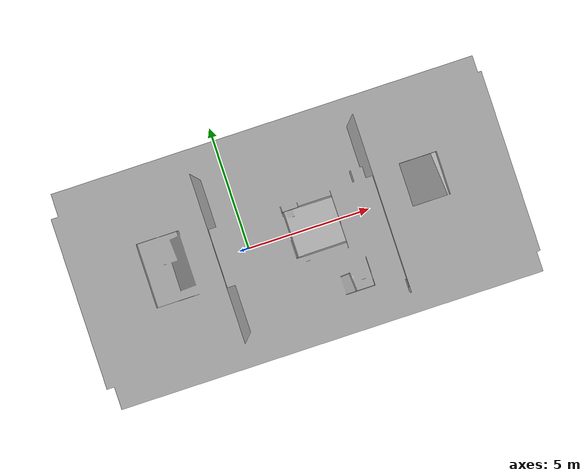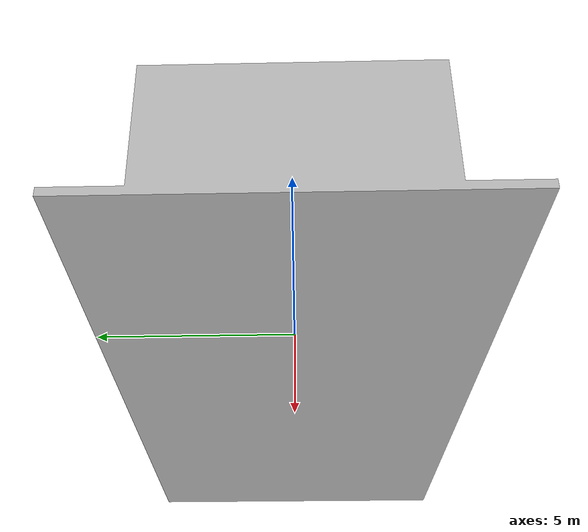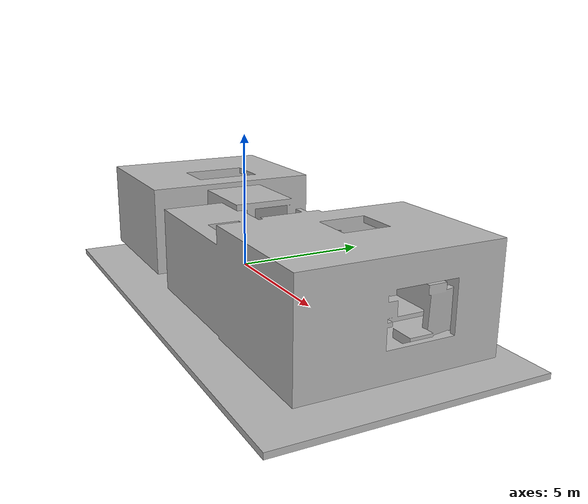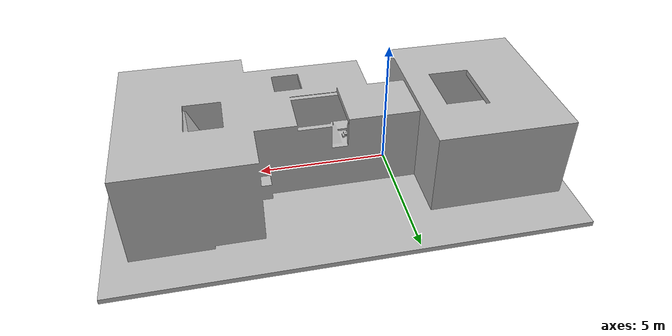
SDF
<?xml version="1.0"?>
<sdf version="1.9">
  <model name="pulso_disaster_scene">
    <static>true</static>
    <link name="scene">
      <visual name="visual">
        <geometry><mesh><uri>meshes/pulso_disaster_visual.dae</uri></mesh></geometry>
      </visual>
      <collision name="architecture_collision">
        <geometry><mesh><uri>meshes/pulso_disaster_collision.obj</uri></mesh></geometry>
        <surface><friction><ode><mu>0.9</mu><mu2>0.75</mu2></ode></friction></surface>
      </collision>
    </link>
  </model>
</sdf>
